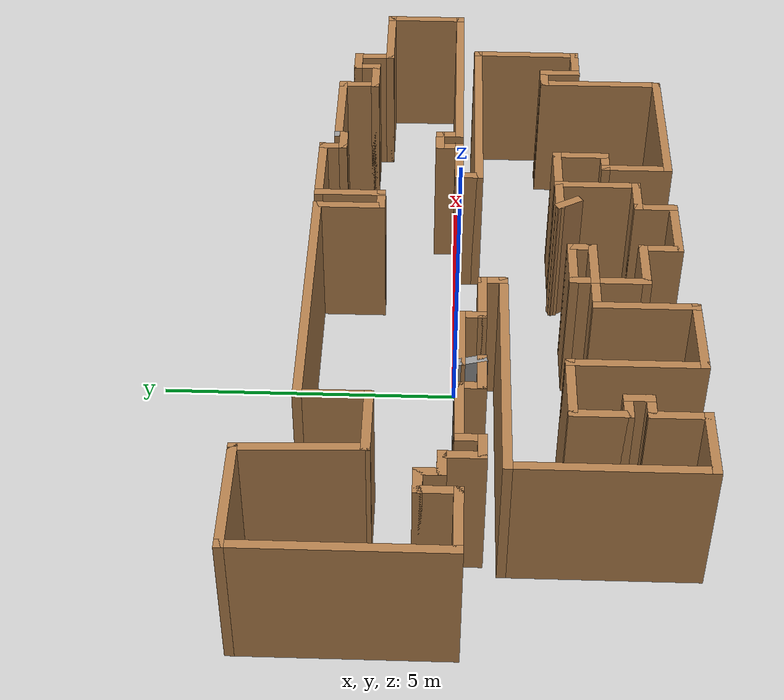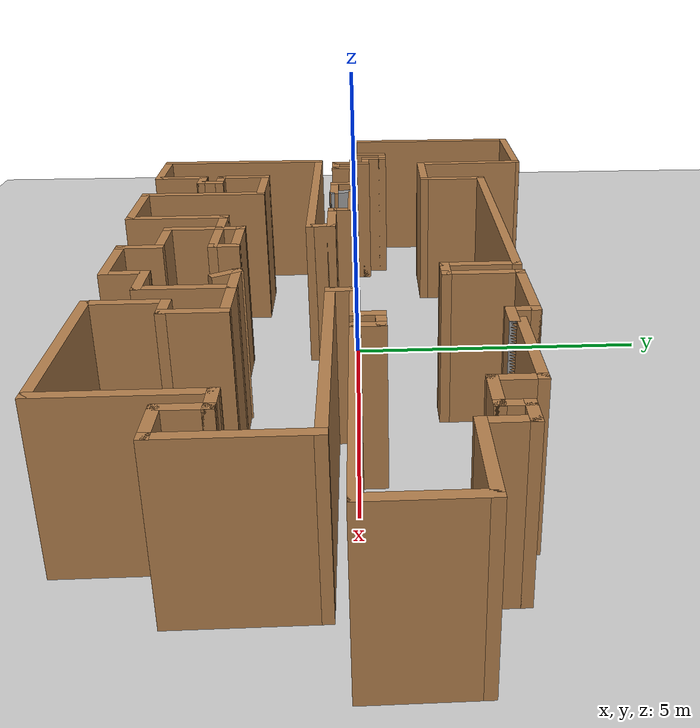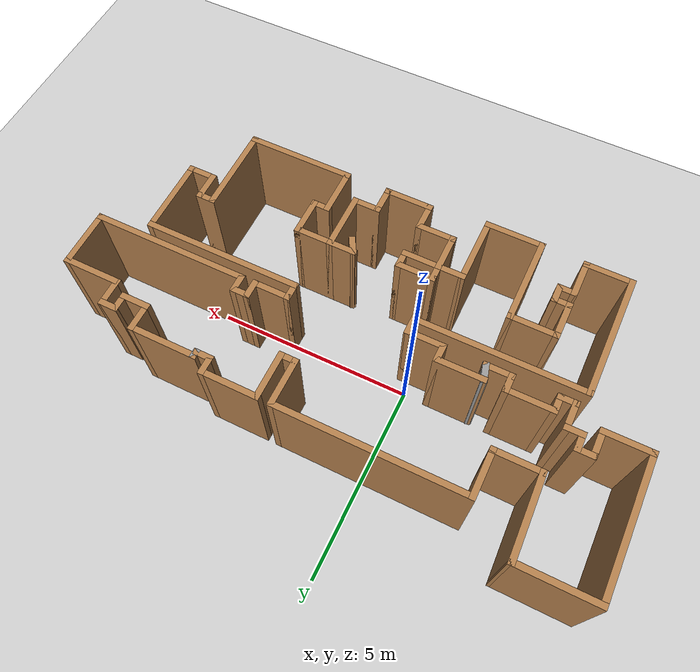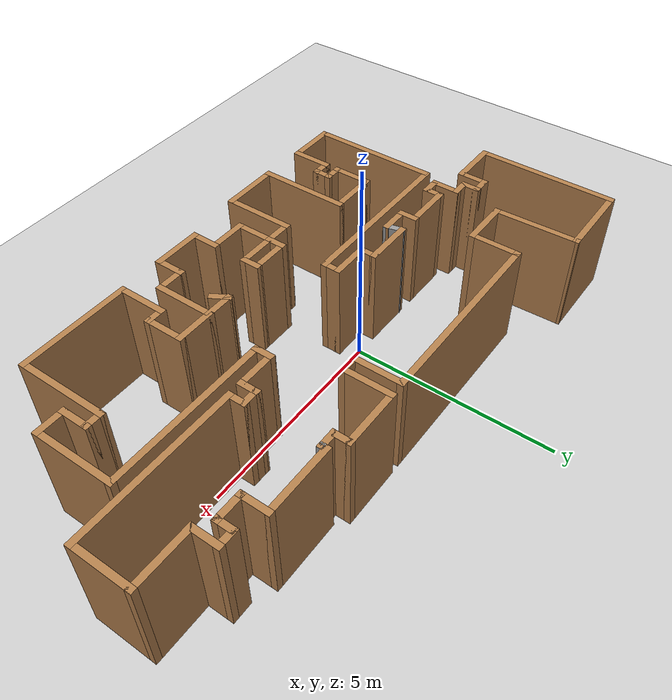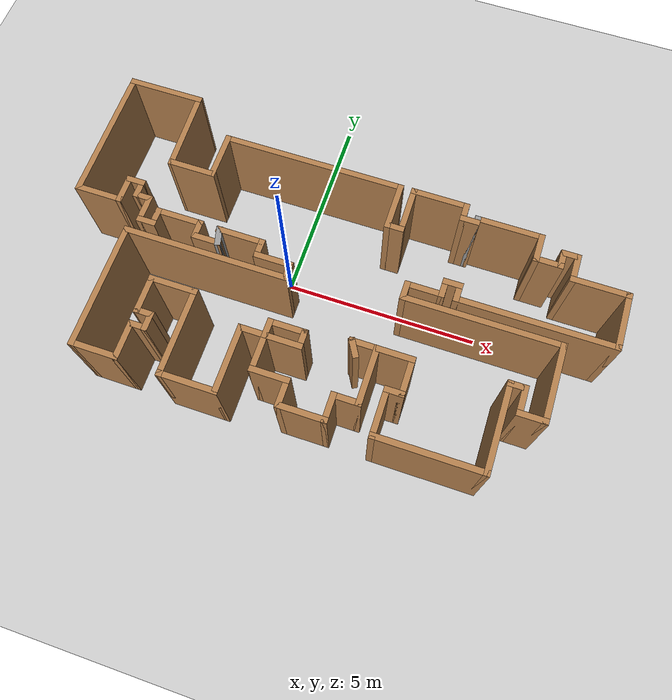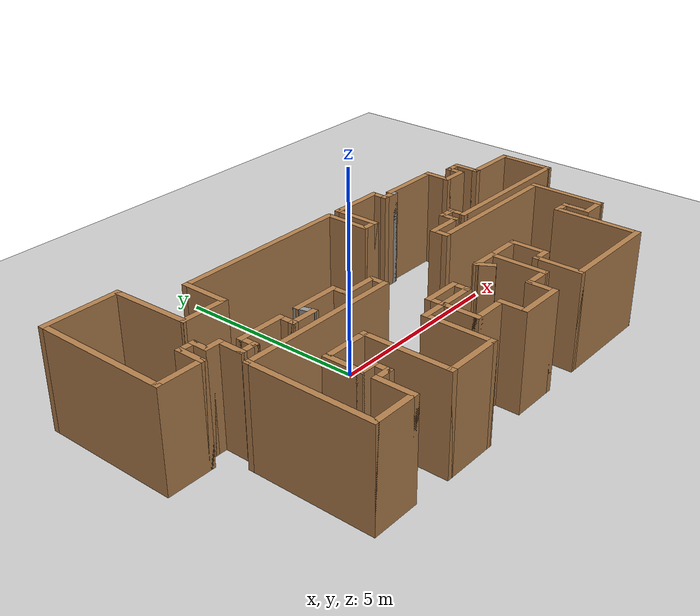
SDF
<sdf version="1.6">
 <world name="default">
  <model name="ground_plane">
   <static>1</static>
   <link name="link">
    <collision name="collision">
     <geometry><plane><normal>0 0 1</normal><size>100 100</size></plane></geometry>
     <surface>
      <contact><collide_bitmask>65535</collide_bitmask></contact>
      <friction><ode><mu>100</mu><mu2>50</mu2></ode></friction>
     </surface>
    </collision>
    <visual name="visual">
     <cast_shadows>0</cast_shadows>
     <geometry><plane><normal>0 0 1</normal><size>100 100</size></plane></geometry>
     <material>
      <script><uri>file://media/materials/scripts/gazebo.material</uri><name>Gazebo/Grey</name></script>
     </material>
    </visual>
   </link>
  </model>
  <model name="map_83">
   <pose>1.33128 -0.274002 0 0 -0 0</pose>
   <link name="Wall_0">
    <collision name="Wall_0_Collision">
     <geometry><box><size>2 0.15 2.5</size></box></geometry>
     <pose>0 0 1.25 0 -0 0</pose>
    </collision>
    <visual name="Wall_0_Visual">
     <pose>0 0 1.25 0 -0 0</pose>
     <geometry><box><size>2 0.15 2.5</size></box></geometry>
     <material>
      <script><uri>file://media/materials/scripts/gazebo.material</uri><name>Gazebo/Wood</name></script>
      <ambient>1 1 1 1</ambient>
     </material>
     <meta><layer>0</layer></meta>
    </visual>
    <pose>-5.85471 3.58172 0 0 -0 3.14159</pose>
   </link>
   <link name="Wall_1">
    <collision name="Wall_1_Collision">
     <geometry><box><size>3.5 0.15 2.5</size></box></geometry>
     <pose>0 0 1.25 0 -0 0</pose>
    </collision>
    <visual name="Wall_1_Visual">
     <pose>0 0 1.25 0 -0 0</pose>
     <geometry><box><size>3.5 0.15 2.5</size></box></geometry>
     <material>
      <script><uri>file://media/materials/scripts/gazebo.material</uri><name>Gazebo/Wood</name></script>
      <ambient>1 1 1 1</ambient>
     </material>
     <meta><layer>0</layer></meta>
    </visual>
    <pose>-6.77971 1.90672 0 0 -0 -1.5708</pose>
   </link>
   <link name="Wall_10">
    <collision name="Wall_10_Collision">
     <geometry><box><size>0.5 0.15 2.5</size></box></geometry>
     <pose>0 0 1.25 0 -0 0</pose>
    </collision>
    <visual name="Wall_10_Visual">
     <pose>0 0 1.25 0 -0 0</pose>
     <geometry><box><size>0.5 0.15 2.5</size></box></geometry>
     <material>
      <script><uri>file://media/materials/scripts/gazebo.material</uri><name>Gazebo/Wood</name></script>
      <ambient>1 1 1 1</ambient>
     </material>
     <meta><layer>0</layer></meta>
    </visual>
    <pose>-5.32971 0.656716 0 0 -0 -1.5708</pose>
   </link>
   <link name="Wall_101">
    <collision name="Wall_101_Collision">
     <geometry><box><size>0.75 0.15 2.5</size></box></geometry>
     <pose>0 0 1.25 0 -0 0</pose>
    </collision>
    <visual name="Wall_101_Visual">
     <pose>0 0 1.25 0 -0 0</pose>
     <geometry><box><size>0.75 0.15 2.5</size></box></geometry>
     <material>
      <script><uri>file://media/materials/scripts/gazebo.material</uri><name>Gazebo/Wood</name></script>
      <ambient>1 1 1 1</ambient>
     </material>
     <meta><layer>0</layer></meta>
    </visual>
    <pose>1.22971 -1.48395 0 0 -0 3.14159</pose>
   </link>
   <link name="Wall_104">
    <collision name="Wall_104_Collision">
     <geometry><box><size>0.5 0.15 2.5</size></box></geometry>
     <pose>0 0 1.25 0 -0 0</pose>
    </collision>
    <visual name="Wall_104_Visual">
     <pose>0 0 1.25 0 -0 0</pose>
     <geometry><box><size>0.5 0.15 2.5</size></box></geometry>
     <material>
      <script><uri>file://media/materials/scripts/gazebo.material</uri><name>Gazebo/Wood</name></script>
      <ambient>1 1 1 1</ambient>
     </material>
     <meta><layer>0</layer></meta>
    </visual>
    <pose>1.01721 -1.6355 0 0 -0 -1.0472</pose>
   </link>
   <link name="Wall_11">
    <collision name="Wall_11_Collision">
     <geometry><box><size>0.5 0.15 2.5</size></box></geometry>
     <pose>0 0 1.25 0 -0 0</pose>
    </collision>
    <visual name="Wall_11_Visual">
     <pose>0 0 1.25 0 -0 0</pose>
     <geometry><box><size>0.5 0.15 2.5</size></box></geometry>
     <material>
      <script><uri>file://media/materials/scripts/gazebo.material</uri><name>Gazebo/Wood</name></script>
      <ambient>1 1 1 1</ambient>
     </material>
     <meta><layer>0</layer></meta>
    </visual>
    <pose>-5.15471 0.481716 0 0 -0 0</pose>
   </link>
   <link name="Wall_12">
    <collision name="Wall_12_Collision">
     <geometry><box><size>0.75 0.15 2.5</size></box></geometry>
     <pose>0 0 1.25 0 -0 0</pose>
    </collision>
    <visual name="Wall_12_Visual">
     <pose>0 0 1.25 0 -0 0</pose>
     <geometry><box><size>0.75 0.15 2.5</size></box></geometry>
     <material>
      <script><uri>file://media/materials/scripts/gazebo.material</uri><name>Gazebo/Wood</name></script>
      <ambient>1 1 1 1</ambient>
     </material>
     <meta><layer>0</layer></meta>
    </visual>
    <pose>-4.97971 0.181717 0 0 -0 -1.5708</pose>
   </link>
   <link name="Wall_13">
    <collision name="Wall_13_Collision">
     <geometry><box><size>0.5 0.15 2.5</size></box></geometry>
     <pose>0 0 1.25 0 -0 0</pose>
    </collision>
    <visual name="Wall_13_Visual">
     <pose>0 0 1.25 0 -0 0</pose>
     <geometry><box><size>0.5 0.15 2.5</size></box></geometry>
     <material>
      <script><uri>file://media/materials/scripts/gazebo.material</uri><name>Gazebo/Wood</name></script>
      <ambient>1 1 1 1</ambient>
     </material>
     <meta><layer>0</layer></meta>
    </visual>
    <pose>-4.80471 -0.118283 0 0 -0 0</pose>
   </link>
   <link name="Wall_14">
    <collision name="Wall_14_Collision">
     <geometry><box><size>0.5 0.15 2.5</size></box></geometry>
     <pose>0 0 1.25 0 -0 0</pose>
    </collision>
    <visual name="Wall_14_Visual">
     <pose>0 0 1.25 0 -0 0</pose>
     <geometry><box><size>0.5 0.15 2.5</size></box></geometry>
     <material>
      <script><uri>file://media/materials/scripts/gazebo.material</uri><name>Gazebo/Wood</name></script>
      <ambient>1 1 1 1</ambient>
     </material>
     <meta><layer>0</layer></meta>
    </visual>
    <pose>-4.62971 0.056717 0 0 -0 1.5708</pose>
   </link>
   <link name="Wall_15">
    <collision name="Wall_15_Collision">
     <geometry><box><size>1.25 0.15 2.5</size></box></geometry>
     <pose>0 0 1.25 0 -0 0</pose>
    </collision>
    <visual name="Wall_15_Visual">
     <pose>0 0 1.25 0 -0 0</pose>
     <geometry><box><size>1.25 0.15 2.5</size></box></geometry>
     <material>
      <script><uri>file://media/materials/scripts/gazebo.material</uri><name>Gazebo/Wood</name></script>
      <ambient>1 1 1 1</ambient>
     </material>
     <meta><layer>0</layer></meta>
    </visual>
    <pose>-4.07971 0.231716 0 0 -0 0</pose>
   </link>
   <link name="Wall_16">
    <collision name="Wall_16_Collision">
     <geometry><box><size>0.5 0.15 2.5</size></box></geometry>
     <pose>0 0 1.25 0 -0 0</pose>
    </collision>
    <visual name="Wall_16_Visual">
     <pose>0 0 1.25 0 -0 0</pose>
     <geometry><box><size>0.5 0.15 2.5</size></box></geometry>
     <material>
      <script><uri>file://media/materials/scripts/gazebo.material</uri><name>Gazebo/Wood</name></script>
      <ambient>1 1 1 1</ambient>
     </material>
     <meta><layer>0</layer></meta>
    </visual>
    <pose>-3.52971 0.056717 0 0 -0 -1.5708</pose>
   </link>
   <link name="Wall_17">
    <collision name="Wall_17_Collision">
     <geometry><box><size>0.75 0.15 2.5</size></box></geometry>
     <pose>0 0 1.25 0 -0 0</pose>
    </collision>
    <visual name="Wall_17_Visual">
     <pose>0 0 1.25 0 -0 0</pose>
     <geometry><box><size>0.75 0.15 2.5</size></box></geometry>
     <material>
      <script><uri>file://media/materials/scripts/gazebo.material</uri><name>Gazebo/Wood</name></script>
      <ambient>1 1 1 1</ambient>
     </material>
     <meta><layer>0</layer></meta>
    </visual>
    <pose>-3.22971 -0.118283 0 0 -0 0</pose>
   </link>
   <link name="Wall_18">
    <collision name="Wall_18_Collision">
     <geometry><box><size>0.5 0.15 2.5</size></box></geometry>
     <pose>0 0 1.25 0 -0 0</pose>
    </collision>
    <visual name="Wall_18_Visual">
     <pose>0 0 1.25 0 -0 0</pose>
     <geometry><box><size>0.5 0.15 2.5</size></box></geometry>
     <material>
      <script><uri>file://media/materials/scripts/gazebo.material</uri><name>Gazebo/Grey</name></script>
      <ambient>1 1 1 1</ambient>
     </material>
     <meta><layer>0</layer></meta>
    </visual>
    <pose>-2.975 0.050753 0 0 -0 1.8326</pose>
   </link>
   <link name="Wall_19">
    <collision name="Wall_19_Collision">
     <geometry><box><size>1.25 0.15 2.5</size></box></geometry>
     <pose>0 0 1.25 0 -0 0</pose>
    </collision>
    <visual name="Wall_19_Visual">
     <pose>0 0 1.25 0 -0 0</pose>
     <geometry><box><size>1.25 0.15 2.5</size></box></geometry>
     <material>
      <script><uri>file://media/materials/scripts/gazebo.material</uri><name>Gazebo/Wood</name></script>
      <ambient>1 1 1 1</ambient>
     </material>
     <meta><layer>0</layer></meta>
    </visual>
    <pose>-2.47029 0.219791 0 0 -0 0</pose>
   </link>
   <link name="Wall_20">
    <collision name="Wall_20_Collision">
     <geometry><box><size>0.5 0.15 2.5</size></box></geometry>
     <pose>0 0 1.25 0 -0 0</pose>
    </collision>
    <visual name="Wall_20_Visual">
     <pose>0 0 1.25 0 -0 0</pose>
     <geometry><box><size>0.5 0.15 2.5</size></box></geometry>
     <material>
      <script><uri>file://media/materials/scripts/gazebo.material</uri><name>Gazebo/Wood</name></script>
      <ambient>1 1 1 1</ambient>
     </material>
     <meta><layer>0</layer></meta>
    </visual>
    <pose>-1.92029 0.044791 0 0 -0 -1.5708</pose>
   </link>
   <link name="Wall_21">
    <collision name="Wall_21_Collision">
     <geometry><box><size>1 0.15 2.5</size></box></geometry>
     <pose>0 0 1.25 0 -0 0</pose>
    </collision>
    <visual name="Wall_21_Visual">
     <pose>0 0 1.25 0 -0 0</pose>
     <geometry><box><size>1 0.15 2.5</size></box></geometry>
     <material>
      <script><uri>file://media/materials/scripts/gazebo.material</uri><name>Gazebo/Wood</name></script>
      <ambient>1 1 1 1</ambient>
     </material>
     <meta><layer>0</layer></meta>
    </visual>
    <pose>-1.49529 -0.130209 0 0 -0 0</pose>
   </link>
   <link name="Wall_22">
    <collision name="Wall_22_Collision">
     <geometry><box><size>0.5 0.15 2.5</size></box></geometry>
     <pose>0 0 1.25 0 -0 0</pose>
    </collision>
    <visual name="Wall_22_Visual">
     <pose>0 0 1.25 0 -0 0</pose>
     <geometry><box><size>0.5 0.15 2.5</size></box></geometry>
     <material>
      <script><uri>file://media/materials/scripts/gazebo.material</uri><name>Gazebo/Wood</name></script>
      <ambient>1 1 1 1</ambient>
     </material>
     <meta><layer>0</layer></meta>
    </visual>
    <pose>-1.07029 -0.305209 0 0 -0 -1.5708</pose>
   </link>
   <link name="Wall_23">
    <collision name="Wall_23_Collision">
     <geometry><box><size>4.25 0.15 2.5</size></box></geometry>
     <pose>0 0 1.25 0 -0 0</pose>
    </collision>
    <visual name="Wall_23_Visual">
     <pose>0 0 1.25 0 -0 0</pose>
     <geometry><box><size>4.25 0.15 2.5</size></box></geometry>
     <material>
      <script><uri>file://media/materials/scripts/gazebo.material</uri><name>Gazebo/Wood</name></script>
      <ambient>1 1 1 1</ambient>
     </material>
     <meta><layer>0</layer></meta>
    </visual>
    <pose>-3.12029 -0.48021 0 0 -0 3.14159</pose>
   </link>
   <link name="Wall_24">
    <collision name="Wall_24_Collision">
     <geometry><box><size>3.20374 0.15 2.5</size></box></geometry>
     <pose>0 0 1.25 0 -0 0</pose>
    </collision>
    <visual name="Wall_24_Visual">
     <pose>0 0 1.25 0 -0 0</pose>
     <geometry><box><size>3.20374 0.15 2.5</size></box></geometry>
     <material>
      <script><uri>file://media/materials/scripts/gazebo.material</uri><name>Gazebo/Wood</name></script>
      <ambient>1 1 1 1</ambient>
     </material>
     <meta><layer>0</layer></meta>
    </visual>
    <pose>-5.17029 -2.00708 0 0 -0 -1.5708</pose>
   </link>
   <link name="Wall_30">
    <collision name="Wall_30_Collision">
     <geometry><box><size>1.25 0.15 2.5</size></box></geometry>
     <pose>0 0 1.25 0 -0 0</pose>
    </collision>
    <visual name="Wall_30_Visual">
     <pose>0 0 1.25 0 -0 0</pose>
     <geometry><box><size>1.25 0.15 2.5</size></box></geometry>
     <material>
      <script><uri>file://media/materials/scripts/gazebo.material</uri><name>Gazebo/Wood</name></script>
      <ambient>1 1 1 1</ambient>
     </material>
     <meta><layer>0</layer></meta>
    </visual>
    <pose>-4.62029 -3.53395 0 0 -0 0</pose>
   </link>
   <link name="Wall_31">
    <collision name="Wall_31_Collision">
     <geometry><box><size>1 0.15 2.5</size></box></geometry>
     <pose>0 0 1.25 0 -0 0</pose>
    </collision>
    <visual name="Wall_31_Visual">
     <pose>0 0 1.25 0 -0 0</pose>
     <geometry><box><size>1 0.15 2.5</size></box></geometry>
     <material>
      <script><uri>file://media/materials/scripts/gazebo.material</uri><name>Gazebo/Wood</name></script>
      <ambient>1 1 1 1</ambient>
     </material>
     <meta><layer>0</layer></meta>
    </visual>
    <pose>-4.07029 -3.10895 0 0 -0 1.5708</pose>
   </link>
   <link name="Wall_32">
    <collision name="Wall_32_Collision">
     <geometry><box><size>0.5 0.15 2.5</size></box></geometry>
     <pose>0 0 1.25 0 -0 0</pose>
    </collision>
    <visual name="Wall_32_Visual">
     <pose>0 0 1.25 0 -0 0</pose>
     <geometry><box><size>0.5 0.15 2.5</size></box></geometry>
     <material>
      <script><uri>file://media/materials/scripts/gazebo.material</uri><name>Gazebo/Wood</name></script>
      <ambient>1 1 1 1</ambient>
     </material>
     <meta><layer>0</layer></meta>
    </visual>
    <pose>-3.89529 -2.68395 0 0 -0 0</pose>
   </link>
   <link name="Wall_33">
    <collision name="Wall_33_Collision">
     <geometry><box><size>0.5 0.15 2.5</size></box></geometry>
     <pose>0 0 1.25 0 -0 0</pose>
    </collision>
    <visual name="Wall_33_Visual">
     <pose>0 0 1.25 0 -0 0</pose>
     <geometry><box><size>0.5 0.15 2.5</size></box></geometry>
     <material>
      <script><uri>file://media/materials/scripts/gazebo.material</uri><name>Gazebo/Wood</name></script>
      <ambient>1 1 1 1</ambient>
     </material>
     <meta><layer>0</layer></meta>
    </visual>
    <pose>-3.72029 -2.50895 0 0 -0 1.5708</pose>
   </link>
   <link name="Wall_34">
    <collision name="Wall_34_Collision">
     <geometry><box><size>0.5 0.15 2.5</size></box></geometry>
     <pose>0 0 1.25 0 -0 0</pose>
    </collision>
    <visual name="Wall_34_Visual">
     <pose>0 0 1.25 0 -0 0</pose>
     <geometry><box><size>0.5 0.15 2.5</size></box></geometry>
     <material>
      <script><uri>file://media/materials/scripts/gazebo.material</uri><name>Gazebo/Wood</name></script>
      <ambient>1 1 1 1</ambient>
     </material>
     <meta><layer>0</layer></meta>
    </visual>
    <pose>-3.89529 -2.33395 0 0 -0 3.14159</pose>
   </link>
   <link name="Wall_35">
    <collision name="Wall_35_Collision">
     <geometry><box><size>1 0.15 2.5</size></box></geometry>
     <pose>0 0 1.25 0 -0 0</pose>
    </collision>
    <visual name="Wall_35_Visual">
     <pose>0 0 1.25 0 -0 0</pose>
     <geometry><box><size>1 0.15 2.5</size></box></geometry>
     <material>
      <script><uri>file://media/materials/scripts/gazebo.material</uri><name>Gazebo/Wood</name></script>
      <ambient>1 1 1 1</ambient>
     </material>
     <meta><layer>0</layer></meta>
    </visual>
    <pose>-4.07029 -1.90895 0 0 -0 1.5708</pose>
   </link>
   <link name="Wall_36">
    <collision name="Wall_36_Collision">
     <geometry><box><size>1.25 0.15 2.5</size></box></geometry>
     <pose>0 0 1.25 0 -0 0</pose>
    </collision>
    <visual name="Wall_36_Visual">
     <pose>0 0 1.25 0 -0 0</pose>
     <geometry><box><size>1.25 0.15 2.5</size></box></geometry>
     <material>
      <script><uri>file://media/materials/scripts/gazebo.material</uri><name>Gazebo/Wood</name></script>
      <ambient>1 1 1 1</ambient>
     </material>
     <meta><layer>0</layer></meta>
    </visual>
    <pose>-3.52029 -1.48395 0 0 -0 0</pose>
   </link>
   <link name="Wall_37">
    <collision name="Wall_37_Collision">
     <geometry><box><size>2.25 0.15 2.5</size></box></geometry>
     <pose>0 0 1.25 0 -0 0</pose>
    </collision>
    <visual name="Wall_37_Visual">
     <pose>0 0 1.25 0 -0 0</pose>
     <geometry><box><size>2.25 0.15 2.5</size></box></geometry>
     <material>
      <script><uri>file://media/materials/scripts/gazebo.material</uri><name>Gazebo/Wood</name></script>
      <ambient>1 1 1 1</ambient>
     </material>
     <meta><layer>0</layer></meta>
    </visual>
    <pose>-2.97029 -2.53395 0 0 -0 -1.5708</pose>
   </link>
   <link name="Wall_38">
    <collision name="Wall_38_Collision">
     <geometry><box><size>1.5 0.15 2.5</size></box></geometry>
     <pose>0 0 1.25 0 -0 0</pose>
    </collision>
    <visual name="Wall_38_Visual">
     <pose>0 0 1.25 0 -0 0</pose>
     <geometry><box><size>1.5 0.15 2.5</size></box></geometry>
     <material>
      <script><uri>file://media/materials/scripts/gazebo.material</uri><name>Gazebo/Wood</name></script>
      <ambient>1 1 1 1</ambient>
     </material>
     <meta><layer>0</layer></meta>
    </visual>
    <pose>-2.29529 -3.58395 0 0 -0 0</pose>
   </link>
   <link name="Wall_42">
    <collision name="Wall_42_Collision">
     <geometry><box><size>1.75 0.15 2.5</size></box></geometry>
     <pose>0 0 1.25 0 -0 0</pose>
    </collision>
    <visual name="Wall_42_Visual">
     <pose>0 0 1.25 0 -0 0</pose>
     <geometry><box><size>1.75 0.15 2.5</size></box></geometry>
     <material>
      <script><uri>file://media/materials/scripts/gazebo.material</uri><name>Gazebo/Wood</name></script>
      <ambient>1 1 1 1</ambient>
     </material>
     <meta><layer>0</layer></meta>
    </visual>
    <pose>-1.62029 -2.78395 0 0 -0 1.5708</pose>
   </link>
   <link name="Wall_43">
    <collision name="Wall_43_Collision">
     <geometry><box><size>0.75 0.15 2.5</size></box></geometry>
     <pose>0 0 1.25 0 -0 0</pose>
    </collision>
    <visual name="Wall_43_Visual">
     <pose>0 0 1.25 0 -0 0</pose>
     <geometry><box><size>0.75 0.15 2.5</size></box></geometry>
     <material>
      <script><uri>file://media/materials/scripts/gazebo.material</uri><name>Gazebo/Wood</name></script>
      <ambient>1 1 1 1</ambient>
     </material>
     <meta><layer>0</layer></meta>
    </visual>
    <pose>-1.32029 -1.98395 0 0 -0 0</pose>
   </link>
   <link name="Wall_44">
    <collision name="Wall_44_Collision">
     <geometry><box><size>0.5 0.15 2.5</size></box></geometry>
     <pose>0 0 1.25 0 -0 0</pose>
    </collision>
    <visual name="Wall_44_Visual">
     <pose>0 0 1.25 0 -0 0</pose>
     <geometry><box><size>0.5 0.15 2.5</size></box></geometry>
     <material>
      <script><uri>file://media/materials/scripts/gazebo.material</uri><name>Gazebo/Wood</name></script>
      <ambient>1 1 1 1</ambient>
     </material>
     <meta><layer>0</layer></meta>
    </visual>
    <pose>-1.02029 -1.80895 0 0 -0 1.5708</pose>
   </link>
   <link name="Wall_45">
    <collision name="Wall_45_Collision">
     <geometry><box><size>1 0.15 2.5</size></box></geometry>
     <pose>0 0 1.25 0 -0 0</pose>
    </collision>
    <visual name="Wall_45_Visual">
     <pose>0 0 1.25 0 -0 0</pose>
     <geometry><box><size>1 0.15 2.5</size></box></geometry>
     <material>
      <script><uri>file://media/materials/scripts/gazebo.material</uri><name>Gazebo/Wood</name></script>
      <ambient>1 1 1 1</ambient>
     </material>
     <meta><layer>0</layer></meta>
    </visual>
    <pose>-0.595293 -1.63395 0 0 -0 0</pose>
   </link>
   <link name="Wall_50">
    <collision name="Wall_50_Collision">
     <geometry><box><size>0.5 0.15 2.5</size></box></geometry>
     <pose>0 0 1.25 0 -0 0</pose>
    </collision>
    <visual name="Wall_50_Visual">
     <pose>0 0 1.25 0 -0 0</pose>
     <geometry><box><size>0.5 0.15 2.5</size></box></geometry>
     <material>
      <script><uri>file://media/materials/scripts/gazebo.material</uri><name>Gazebo/Wood</name></script>
      <ambient>1 1 1 1</ambient>
     </material>
     <meta><layer>0</layer></meta>
    </visual>
    <pose>-0.170293 -1.80895 0 0 -0 -1.5708</pose>
   </link>
   <link name="Wall_51">
    <collision name="Wall_51_Collision">
     <geometry><box><size>1 0.15 2.5</size></box></geometry>
     <pose>0 0 1.25 0 -0 0</pose>
    </collision>
    <visual name="Wall_51_Visual">
     <pose>0 0 1.25 0 -0 0</pose>
     <geometry><box><size>1 0.15 2.5</size></box></geometry>
     <material>
      <script><uri>file://media/materials/scripts/gazebo.material</uri><name>Gazebo/Wood</name></script>
      <ambient>1 1 1 1</ambient>
     </material>
     <meta><layer>0</layer></meta>
    </visual>
    <pose>-0.595293 -1.98395 0 0 -0 3.14159</pose>
   </link>
   <link name="Wall_52">
    <collision name="Wall_52_Collision">
     <geometry><box><size>1 0.15 2.5</size></box></geometry>
     <pose>0 0 1.25 0 -0 0</pose>
    </collision>
    <visual name="Wall_52_Visual">
     <pose>0 0 1.25 0 -0 0</pose>
     <geometry><box><size>1 0.15 2.5</size></box></geometry>
     <material>
      <script><uri>file://media/materials/scripts/gazebo.material</uri><name>Gazebo/Wood</name></script>
      <ambient>1 1 1 1</ambient>
     </material>
     <meta><layer>0</layer></meta>
    </visual>
    <pose>-1.02029 -2.40895 0 0 -0 -1.5708</pose>
   </link>
   <link name="Wall_53">
    <collision name="Wall_53_Collision">
     <geometry><box><size>1 0.15 2.5</size></box></geometry>
     <pose>0 0 1.25 0 -0 0</pose>
    </collision>
    <visual name="Wall_53_Visual">
     <pose>0 0 1.25 0 -0 0</pose>
     <geometry><box><size>1 0.15 2.5</size></box></geometry>
     <material>
      <script><uri>file://media/materials/scripts/gazebo.material</uri><name>Gazebo/Wood</name></script>
      <ambient>1 1 1 1</ambient>
     </material>
     <meta><layer>0</layer></meta>
    </visual>
    <pose>-0.595293 -2.83395 0 0 -0 0</pose>
   </link>
   <link name="Wall_54">
    <collision name="Wall_54_Collision">
     <geometry><box><size>0.75 0.15 2.5</size></box></geometry>
     <pose>0 0 1.25 0 -0 0</pose>
    </collision>
    <visual name="Wall_54_Visual">
     <pose>0 0 1.25 0 -0 0</pose>
     <geometry><box><size>0.75 0.15 2.5</size></box></geometry>
     <material>
      <script><uri>file://media/materials/scripts/gazebo.material</uri><name>Gazebo/Wood</name></script>
      <ambient>1 1 1 1</ambient>
     </material>
     <meta><layer>0</layer></meta>
    </visual>
    <pose>-0.170293 -3.13395 0 0 -0 -1.5708</pose>
   </link>
   <link name="Wall_55">
    <collision name="Wall_55_Collision">
     <geometry><box><size>1.25 0.15 2.5</size></box></geometry>
     <pose>0 0 1.25 0 -0 0</pose>
    </collision>
    <visual name="Wall_55_Visual">
     <pose>0 0 1.25 0 -0 0</pose>
     <geometry><box><size>1.25 0.15 2.5</size></box></geometry>
     <material>
      <script><uri>file://media/materials/scripts/gazebo.material</uri><name>Gazebo/Wood</name></script>
      <ambient>1 1 1 1</ambient>
     </material>
     <meta><layer>0</layer></meta>
    </visual>
    <pose>0.379707 -3.43395 0 0 -0 0</pose>
   </link>
   <link name="Wall_56">
    <collision name="Wall_56_Collision">
     <geometry><box><size>0.75 0.15 2.5</size></box></geometry>
     <pose>0 0 1.25 0 -0 0</pose>
    </collision>
    <visual name="Wall_56_Visual">
     <pose>0 0 1.25 0 -0 0</pose>
     <geometry><box><size>0.75 0.15 2.5</size></box></geometry>
     <material>
      <script><uri>file://media/materials/scripts/gazebo.material</uri><name>Gazebo/Wood</name></script>
      <ambient>1 1 1 1</ambient>
     </material>
     <meta><layer>0</layer></meta>
    </visual>
    <pose>0.929707 -3.13395 0 0 -0 1.5708</pose>
   </link>
   <link name="Wall_57">
    <collision name="Wall_57_Collision">
     <geometry><box><size>0.75 0.15 2.5</size></box></geometry>
     <pose>0 0 1.25 0 -0 0</pose>
    </collision>
    <visual name="Wall_57_Visual">
     <pose>0 0 1.25 0 -0 0</pose>
     <geometry><box><size>0.75 0.15 2.5</size></box></geometry>
     <material>
      <script><uri>file://media/materials/scripts/gazebo.material</uri><name>Gazebo/Wood</name></script>
      <ambient>1 1 1 1</ambient>
     </material>
     <meta><layer>0</layer></meta>
    </visual>
    <pose>1.22971 -2.83395 0 0 -0 0</pose>
   </link>
   <link name="Wall_58">
    <collision name="Wall_58_Collision">
     <geometry><box><size>1.5 0.15 2.5</size></box></geometry>
     <pose>0 0 1.25 0 -0 0</pose>
    </collision>
    <visual name="Wall_58_Visual">
     <pose>0 0 1.25 0 -0 0</pose>
     <geometry><box><size>1.5 0.15 2.5</size></box></geometry>
     <material>
      <script><uri>file://media/materials/scripts/gazebo.material</uri><name>Gazebo/Wood</name></script>
      <ambient>1 1 1 1</ambient>
     </material>
     <meta><layer>0</layer></meta>
    </visual>
    <pose>1.52971 -2.15895 0 0 -0 1.5708</pose>
   </link>
   <link name="Wall_59">
    <collision name="Wall_59_Collision">
     <geometry><box><size>1 0.15 2.5</size></box></geometry>
     <pose>0 0 1.25 0 -0 0</pose>
    </collision>
    <visual name="Wall_59_Visual">
     <pose>0 0 1.25 0 -0 0</pose>
     <geometry><box><size>1 0.15 2.5</size></box></geometry>
     <material>
      <script><uri>file://media/materials/scripts/gazebo.material</uri><name>Gazebo/Wood</name></script>
      <ambient>1 1 1 1</ambient>
     </material>
     <meta><layer>0</layer></meta>
    </visual>
    <pose>1.95471 -1.48395 0 0 -0 0</pose>
   </link>
   <link name="Wall_60">
    <collision name="Wall_60_Collision">
     <geometry><box><size>1 0.15 2.5</size></box></geometry>
     <pose>0 0 1.25 0 -0 0</pose>
    </collision>
    <visual name="Wall_60_Visual">
     <pose>0 0 1.25 0 -0 0</pose>
     <geometry><box><size>1 0.15 2.5</size></box></geometry>
     <material>
      <script><uri>file://media/materials/scripts/gazebo.material</uri><name>Gazebo/Wood</name></script>
      <ambient>1 1 1 1</ambient>
     </material>
     <meta><layer>0</layer></meta>
    </visual>
    <pose>2.37971 -1.90895 0 0 -0 -1.5708</pose>
   </link>
   <link name="Wall_61">
    <collision name="Wall_61_Collision">
     <geometry><box><size>0.5 0.15 2.5</size></box></geometry>
     <pose>0 0 1.25 0 -0 0</pose>
    </collision>
    <visual name="Wall_61_Visual">
     <pose>0 0 1.25 0 -0 0</pose>
     <geometry><box><size>0.5 0.15 2.5</size></box></geometry>
     <material>
      <script><uri>file://media/materials/scripts/gazebo.material</uri><name>Gazebo/Wood</name></script>
      <ambient>1 1 1 1</ambient>
     </material>
     <meta><layer>0</layer></meta>
    </visual>
    <pose>2.20471 -2.33395 0 0 -0 3.14159</pose>
   </link>
   <link name="Wall_62">
    <collision name="Wall_62_Collision">
     <geometry><box><size>1.25 0.15 2.5</size></box></geometry>
     <pose>0 0 1.25 0 -0 0</pose>
    </collision>
    <visual name="Wall_62_Visual">
     <pose>0 0 1.25 0 -0 0</pose>
     <geometry><box><size>1.25 0.15 2.5</size></box></geometry>
     <material>
      <script><uri>file://media/materials/scripts/gazebo.material</uri><name>Gazebo/Wood</name></script>
      <ambient>1 1 1 1</ambient>
     </material>
     <meta><layer>0</layer></meta>
    </visual>
    <pose>2.02971 -2.88395 0 0 -0 -1.5708</pose>
   </link>
   <link name="Wall_63">
    <collision name="Wall_63_Collision">
     <geometry><box><size>2.75 0.15 2.5</size></box></geometry>
     <pose>0 0 1.25 0 -0 0</pose>
    </collision>
    <visual name="Wall_63_Visual">
     <pose>0 0 1.25 0 -0 0</pose>
     <geometry><box><size>2.75 0.15 2.5</size></box></geometry>
     <material>
      <script><uri>file://media/materials/scripts/gazebo.material</uri><name>Gazebo/Wood</name></script>
      <ambient>1 1 1 1</ambient>
     </material>
     <meta><layer>0</layer></meta>
    </visual>
    <pose>3.32971 -3.43395 0 0 -0 0</pose>
   </link>
   <link name="Wall_64">
    <collision name="Wall_64_Collision">
     <geometry><box><size>2.25 0.15 2.5</size></box></geometry>
     <pose>0 0 1.25 0 -0 0</pose>
    </collision>
    <visual name="Wall_64_Visual">
     <pose>0 0 1.25 0 -0 0</pose>
     <geometry><box><size>2.25 0.15 2.5</size></box></geometry>
     <material>
      <script><uri>file://media/materials/scripts/gazebo.material</uri><name>Gazebo/Wood</name></script>
      <ambient>1 1 1 1</ambient>
     </material>
     <meta><layer>0</layer></meta>
    </visual>
    <pose>4.62971 -2.38395 0 0 -0 1.5708</pose>
   </link>
   <link name="Wall_65">
    <collision name="Wall_65_Collision">
     <geometry><box><size>0.5 0.15 2.5</size></box></geometry>
     <pose>0 0 1.25 0 -0 0</pose>
    </collision>
    <visual name="Wall_65_Visual">
     <pose>0 0 1.25 0 -0 0</pose>
     <geometry><box><size>0.5 0.15 2.5</size></box></geometry>
     <material>
      <script><uri>file://media/materials/scripts/gazebo.material</uri><name>Gazebo/Wood</name></script>
      <ambient>1 1 1 1</ambient>
     </material>
     <meta><layer>0</layer></meta>
    </visual>
    <pose>4.80471 -1.33395 0 0 -0 0</pose>
   </link>
   <link name="Wall_66">
    <collision name="Wall_66_Collision">
     <geometry><box><size>0.75 0.15 2.5</size></box></geometry>
     <pose>0 0 1.25 0 -0 0</pose>
    </collision>
    <visual name="Wall_66_Visual">
     <pose>0 0 1.25 0 -0 0</pose>
     <geometry><box><size>0.75 0.15 2.5</size></box></geometry>
     <material>
      <script><uri>file://media/materials/scripts/gazebo.material</uri><name>Gazebo/Wood</name></script>
      <ambient>1 1 1 1</ambient>
     </material>
     <meta><layer>0</layer></meta>
    </visual>
    <pose>4.97971 -1.63395 0 0 -0 -1.5708</pose>
   </link>
   <link name="Wall_67">
    <collision name="Wall_67_Collision">
     <geometry><box><size>0.75 0.15 2.5</size></box></geometry>
     <pose>0 0 1.25 0 -0 0</pose>
    </collision>
    <visual name="Wall_67_Visual">
     <pose>0 0 1.25 0 -0 0</pose>
     <geometry><box><size>0.75 0.15 2.5</size></box></geometry>
     <material>
      <script><uri>file://media/materials/scripts/gazebo.material</uri><name>Gazebo/Wood</name></script>
      <ambient>1 1 1 1</ambient>
     </material>
     <meta><layer>0</layer></meta>
    </visual>
    <pose>5.27971 -1.93395 0 0 -0 0</pose>
   </link>
   <link name="Wall_68">
    <collision name="Wall_68_Collision">
     <geometry><box><size>2 0.15 2.5</size></box></geometry>
     <pose>0 0 1.25 0 -0 0</pose>
    </collision>
    <visual name="Wall_68_Visual">
     <pose>0 0 1.25 0 -0 0</pose>
     <geometry><box><size>2 0.15 2.5</size></box></geometry>
     <material>
      <script><uri>file://media/materials/scripts/gazebo.material</uri><name>Gazebo/Wood</name></script>
      <ambient>1 1 1 1</ambient>
     </material>
     <meta><layer>0</layer></meta>
    </visual>
    <pose>5.57971 -1.00895 0 0 -0 1.5708</pose>
   </link>
   <link name="Wall_69">
    <collision name="Wall_69_Collision">
     <geometry><box><size>4 0.15 2.5</size></box></geometry>
     <pose>0 0 1.25 0 -0 0</pose>
    </collision>
    <visual name="Wall_69_Visual">
     <pose>0 0 1.25 0 -0 0</pose>
     <geometry><box><size>4 0.15 2.5</size></box></geometry>
     <material>
      <script><uri>file://media/materials/scripts/gazebo.material</uri><name>Gazebo/Wood</name></script>
      <ambient>1 1 1 1</ambient>
     </material>
     <meta><layer>0</layer></meta>
    </visual>
    <pose>3.65471 -0.083948 0 0 -0 3.14159</pose>
   </link>
   <link name="Wall_7">
    <collision name="Wall_7_Collision">
     <geometry><box><size>1.25 0.15 2.5</size></box></geometry>
     <pose>0 0 1.25 0 -0 0</pose>
    </collision>
    <visual name="Wall_7_Visual">
     <pose>0 0 1.25 0 -0 0</pose>
     <geometry><box><size>1.25 0.15 2.5</size></box></geometry>
     <material>
      <script><uri>file://media/materials/scripts/gazebo.material</uri><name>Gazebo/Wood</name></script>
      <ambient>1 1 1 1</ambient>
     </material>
     <meta><layer>0</layer></meta>
    </visual>
    <pose>-6.22971 0.231716 0 0 -0 0</pose>
   </link>
   <link name="Wall_72">
    <collision name="Wall_72_Collision">
     <geometry><box><size>0.5 0.15 2.5</size></box></geometry>
     <pose>0 0 1.25 0 -0 0</pose>
    </collision>
    <visual name="Wall_72_Visual">
     <pose>0 0 1.25 0 -0 0</pose>
     <geometry><box><size>0.5 0.15 2.5</size></box></geometry>
     <material>
      <script><uri>file://media/materials/scripts/gazebo.material</uri><name>Gazebo/Wood</name></script>
      <ambient>1 1 1 1</ambient>
     </material>
     <meta><layer>0</layer></meta>
    </visual>
    <pose>1.72971 0.091052 0 0 -0 1.5708</pose>
   </link>
   <link name="Wall_73">
    <collision name="Wall_73_Collision">
     <geometry><box><size>1 0.15 2.5</size></box></geometry>
     <pose>0 0 1.25 0 -0 0</pose>
    </collision>
    <visual name="Wall_73_Visual">
     <pose>0 0 1.25 0 -0 0</pose>
     <geometry><box><size>1 0.15 2.5</size></box></geometry>
     <material>
      <script><uri>file://media/materials/scripts/gazebo.material</uri><name>Gazebo/Wood</name></script>
      <ambient>1 1 1 1</ambient>
     </material>
     <meta><layer>0</layer></meta>
    </visual>
    <pose>2.15471 0.266052 0 0 -0 0</pose>
   </link>
   <link name="Wall_74">
    <collision name="Wall_74_Collision">
     <geometry><box><size>0.5 0.15 2.5</size></box></geometry>
     <pose>0 0 1.25 0 -0 0</pose>
    </collision>
    <visual name="Wall_74_Visual">
     <pose>0 0 1.25 0 -0 0</pose>
     <geometry><box><size>0.5 0.15 2.5</size></box></geometry>
     <material>
      <script><uri>file://media/materials/scripts/gazebo.material</uri><name>Gazebo/Wood</name></script>
      <ambient>1 1 1 1</ambient>
     </material>
     <meta><layer>0</layer></meta>
    </visual>
    <pose>2.57971 0.441052 0 0 -0 1.5708</pose>
   </link>
   <link name="Wall_75">
    <collision name="Wall_75_Collision">
     <geometry><box><size>0.5 0.15 2.5</size></box></geometry>
     <pose>0 0 1.25 0 -0 0</pose>
    </collision>
    <visual name="Wall_75_Visual">
     <pose>0 0 1.25 0 -0 0</pose>
     <geometry><box><size>0.5 0.15 2.5</size></box></geometry>
     <material>
      <script><uri>file://media/materials/scripts/gazebo.material</uri><name>Gazebo/Wood</name></script>
      <ambient>1 1 1 1</ambient>
     </material>
     <meta><layer>0</layer></meta>
    </visual>
    <pose>2.75471 0.616052 0 0 -0 0</pose>
   </link>
   <link name="Wall_76">
    <collision name="Wall_76_Collision">
     <geometry><box><size>0.5 0.15 2.5</size></box></geometry>
     <pose>0 0 1.25 0 -0 0</pose>
    </collision>
    <visual name="Wall_76_Visual">
     <pose>0 0 1.25 0 -0 0</pose>
     <geometry><box><size>0.5 0.15 2.5</size></box></geometry>
     <material>
      <script><uri>file://media/materials/scripts/gazebo.material</uri><name>Gazebo/Wood</name></script>
      <ambient>1 1 1 1</ambient>
     </material>
     <meta><layer>0</layer></meta>
    </visual>
    <pose>2.92971 0.441052 0 0 -0 -1.5708</pose>
   </link>
   <link name="Wall_77">
    <collision name="Wall_77_Collision">
     <geometry><box><size>4 0.15 2.5</size></box></geometry>
     <pose>0 0 1.25 0 -0 0</pose>
    </collision>
    <visual name="Wall_77_Visual">
     <pose>0 0 1.25 0 -0 0</pose>
     <geometry><box><size>4 0.15 2.5</size></box></geometry>
     <material>
      <script><uri>file://media/materials/scripts/gazebo.material</uri><name>Gazebo/Wood</name></script>
      <ambient>1 1 1 1</ambient>
     </material>
     <meta><layer>0</layer></meta>
    </visual>
    <pose>4.85471 0.266052 0 0 -0 0</pose>
   </link>
   <link name="Wall_78">
    <collision name="Wall_78_Collision">
     <geometry><box><size>1.5 0.15 2.5</size></box></geometry>
     <pose>0 0 1.25 0 -0 0</pose>
    </collision>
    <visual name="Wall_78_Visual">
     <pose>0 0 1.25 0 -0 0</pose>
     <geometry><box><size>1.5 0.15 2.5</size></box></geometry>
     <material>
      <script><uri>file://media/materials/scripts/gazebo.material</uri><name>Gazebo/Wood</name></script>
      <ambient>1 1 1 1</ambient>
     </material>
     <meta><layer>0</layer></meta>
    </visual>
    <pose>6.77971 0.941052 0 0 -0 1.5708</pose>
   </link>
   <link name="Wall_79">
    <collision name="Wall_79_Collision">
     <geometry><box><size>1.5 0.15 2.5</size></box></geometry>
     <pose>0 0 1.25 0 -0 0</pose>
    </collision>
    <visual name="Wall_79_Visual">
     <pose>0 0 1.25 0 -0 0</pose>
     <geometry><box><size>1.5 0.15 2.5</size></box></geometry>
     <material>
      <script><uri>file://media/materials/scripts/gazebo.material</uri><name>Gazebo/Wood</name></script>
      <ambient>1 1 1 1</ambient>
     </material>
     <meta><layer>0</layer></meta>
    </visual>
    <pose>6.10471 1.61605 0 0 -0 3.14159</pose>
   </link>
   <link name="Wall_8">
    <collision name="Wall_8_Collision">
     <geometry><box><size>0.75 0.15 2.5</size></box></geometry>
     <pose>0 0 1.25 0 -0 0</pose>
    </collision>
    <visual name="Wall_8_Visual">
     <pose>0 0 1.25 0 -0 0</pose>
     <geometry><box><size>0.75 0.15 2.5</size></box></geometry>
     <material>
      <script><uri>file://media/materials/scripts/gazebo.material</uri><name>Gazebo/Wood</name></script>
      <ambient>1 1 1 1</ambient>
     </material>
     <meta><layer>0</layer></meta>
    </visual>
    <pose>-5.67971 0.531716 0 0 -0 1.5708</pose>
   </link>
   <link name="Wall_80">
    <collision name="Wall_80_Collision">
     <geometry><box><size>0.75 0.15 2.5</size></box></geometry>
     <pose>0 0 1.25 0 -0 0</pose>
    </collision>
    <visual name="Wall_80_Visual">
     <pose>0 0 1.25 0 -0 0</pose>
     <geometry><box><size>0.75 0.15 2.5</size></box></geometry>
     <material>
      <script><uri>file://media/materials/scripts/gazebo.material</uri><name>Gazebo/Wood</name></script>
      <ambient>1 1 1 1</ambient>
     </material>
     <meta><layer>0</layer></meta>
    </visual>
    <pose>5.42971 1.91605 0 0 -0 1.5708</pose>
   </link>
   <link name="Wall_81">
    <collision name="Wall_81_Collision">
     <geometry><box><size>0.5 0.15 2.5</size></box></geometry>
     <pose>0 0 1.25 0 -0 0</pose>
    </collision>
    <visual name="Wall_81_Visual">
     <pose>0 0 1.25 0 -0 0</pose>
     <geometry><box><size>0.5 0.15 2.5</size></box></geometry>
     <material>
      <script><uri>file://media/materials/scripts/gazebo.material</uri><name>Gazebo/Wood</name></script>
      <ambient>1 1 1 1</ambient>
     </material>
     <meta><layer>0</layer></meta>
    </visual>
    <pose>5.25471 2.21605 0 0 -0 3.14159</pose>
   </link>
   <link name="Wall_82">
    <collision name="Wall_82_Collision">
     <geometry><box><size>0.5 0.15 2.5</size></box></geometry>
     <pose>0 0 1.25 0 -0 0</pose>
    </collision>
    <visual name="Wall_82_Visual">
     <pose>0 0 1.25 0 -0 0</pose>
     <geometry><box><size>0.5 0.15 2.5</size></box></geometry>
     <material>
      <script><uri>file://media/materials/scripts/gazebo.material</uri><name>Gazebo/Wood</name></script>
      <ambient>1 1 1 1</ambient>
     </material>
     <meta><layer>0</layer></meta>
    </visual>
    <pose>5.07971 2.04105 0 0 -0 -1.5708</pose>
   </link>
   <link name="Wall_83">
    <collision name="Wall_83_Collision">
     <geometry><box><size>0.75 0.15 2.5</size></box></geometry>
     <pose>0 0 1.25 0 -0 0</pose>
    </collision>
    <visual name="Wall_83_Visual">
     <pose>0 0 1.25 0 -0 0</pose>
     <geometry><box><size>0.75 0.15 2.5</size></box></geometry>
     <material>
      <script><uri>file://media/materials/scripts/gazebo.material</uri><name>Gazebo/Wood</name></script>
      <ambient>1 1 1 1</ambient>
     </material>
     <meta><layer>0</layer></meta>
    </visual>
    <pose>4.77971 1.86605 0 0 -0 3.14159</pose>
   </link>
   <link name="Wall_84">
    <collision name="Wall_84_Collision">
     <geometry><box><size>0.75 0.15 2.5</size></box></geometry>
     <pose>0 0 1.25 0 -0 0</pose>
    </collision>
    <visual name="Wall_84_Visual">
     <pose>0 0 1.25 0 -0 0</pose>
     <geometry><box><size>0.75 0.15 2.5</size></box></geometry>
     <material>
      <script><uri>file://media/materials/scripts/gazebo.material</uri><name>Gazebo/Wood</name></script>
      <ambient>1 1 1 1</ambient>
     </material>
     <meta><layer>0</layer></meta>
    </visual>
    <pose>4.47971 2.16605 0 0 -0 1.5708</pose>
   </link>
   <link name="Wall_85">
    <collision name="Wall_85_Collision">
     <geometry><box><size>1.75 0.15 2.5</size></box></geometry>
     <pose>0 0 1.25 0 -0 0</pose>
    </collision>
    <visual name="Wall_85_Visual">
     <pose>0 0 1.25 0 -0 0</pose>
     <geometry><box><size>1.75 0.15 2.5</size></box></geometry>
     <material>
      <script><uri>file://media/materials/scripts/gazebo.material</uri><name>Gazebo/Wood</name></script>
      <ambient>1 1 1 1</ambient>
     </material>
     <meta><layer>0</layer></meta>
    </visual>
    <pose>3.67971 2.46605 0 0 -0 3.14159</pose>
   </link>
   <link name="Wall_86">
    <collision name="Wall_86_Collision">
     <geometry><box><size>0.25 0.15 2.5</size></box></geometry>
     <pose>0 0 1.25 0 -0 0</pose>
    </collision>
    <visual name="Wall_86_Visual">
     <pose>0 0 1.25 0 -0 0</pose>
     <geometry><box><size>0.25 0.15 2.5</size></box></geometry>
     <material>
      <script><uri>file://media/materials/scripts/gazebo.material</uri><name>Gazebo/Grey</name></script>
      <ambient>1 1 1 1</ambient>
     </material>
     <meta><layer>0</layer></meta>
    </visual>
    <pose>2.87971 2.41605 0 0 -0 -1.5708</pose>
   </link>
   <link name="Wall_87">
    <collision name="Wall_87_Collision">
     <geometry><box><size>0.5 0.15 2.5</size></box></geometry>
     <pose>0 0 1.25 0 -0 0</pose>
    </collision>
    <visual name="Wall_87_Visual">
     <pose>0 0 1.25 0 -0 0</pose>
     <geometry><box><size>0.5 0.15 2.5</size></box></geometry>
     <material>
      <script><uri>file://media/materials/scripts/gazebo.material</uri><name>Gazebo/Wood</name></script>
      <ambient>1 1 1 1</ambient>
     </material>
     <meta><layer>0</layer></meta>
    </visual>
    <pose>2.70471 2.36605 0 0 -0 3.14159</pose>
   </link>
   <link name="Wall_88">
    <collision name="Wall_88_Collision">
     <geometry><box><size>0.5 0.15 2.5</size></box></geometry>
     <pose>0 0 1.25 0 -0 0</pose>
    </collision>
    <visual name="Wall_88_Visual">
     <pose>0 0 1.25 0 -0 0</pose>
     <geometry><box><size>0.5 0.15 2.5</size></box></geometry>
     <material>
      <script><uri>file://media/materials/scripts/gazebo.material</uri><name>Gazebo/Wood</name></script>
      <ambient>1 1 1 1</ambient>
     </material>
     <meta><layer>0</layer></meta>
    </visual>
    <pose>2.52971 2.54105 0 0 -0 1.5708</pose>
   </link>
   <link name="Wall_89">
    <collision name="Wall_89_Collision">
     <geometry><box><size>1.5 0.15 2.5</size></box></geometry>
     <pose>0 0 1.25 0 -0 0</pose>
    </collision>
    <visual name="Wall_89_Visual">
     <pose>0 0 1.25 0 -0 0</pose>
     <geometry><box><size>1.5 0.15 2.5</size></box></geometry>
     <material>
      <script><uri>file://media/materials/scripts/gazebo.material</uri><name>Gazebo/Wood</name></script>
      <ambient>1 1 1 1</ambient>
     </material>
     <meta><layer>0</layer></meta>
    </visual>
    <pose>1.85471 2.71605 0 0 -0 3.14159</pose>
   </link>
   <link name="Wall_9">
    <collision name="Wall_9_Collision">
     <geometry><box><size>0.5 0.15 2.5</size></box></geometry>
     <pose>0 0 1.25 0 -0 0</pose>
    </collision>
    <visual name="Wall_9_Visual">
     <pose>0 0 1.25 0 -0 0</pose>
     <geometry><box><size>0.5 0.15 2.5</size></box></geometry>
     <material>
      <script><uri>file://media/materials/scripts/gazebo.material</uri><name>Gazebo/Wood</name></script>
      <ambient>1 1 1 1</ambient>
     </material>
     <meta><layer>0</layer></meta>
    </visual>
    <pose>-5.50471 0.831717 0 0 -0 0</pose>
   </link>
   <link name="Wall_90">
    <collision name="Wall_90_Collision">
     <geometry><box><size>1.25 0.15 2.5</size></box></geometry>
     <pose>0 0 1.25 0 -0 0</pose>
    </collision>
    <visual name="Wall_90_Visual">
     <pose>0 0 1.25 0 -0 0</pose>
     <geometry><box><size>1.25 0.15 2.5</size></box></geometry>
     <material>
      <script><uri>file://media/materials/scripts/gazebo.material</uri><name>Gazebo/Wood</name></script>
      <ambient>1 1 1 1</ambient>
     </material>
     <meta><layer>0</layer></meta>
    </visual>
    <pose>1.17971 2.16605 0 0 -0 -1.5708</pose>
   </link>
   <link name="Wall_93">
    <collision name="Wall_93_Collision">
     <geometry><box><size>0.5 0.15 2.5</size></box></geometry>
     <pose>0 0 1.25 0 -0 0</pose>
    </collision>
    <visual name="Wall_93_Visual">
     <pose>0 0 1.25 0 -0 0</pose>
     <geometry><box><size>0.5 0.15 2.5</size></box></geometry>
     <material>
      <script><uri>file://media/materials/scripts/gazebo.material</uri><name>Gazebo/Wood</name></script>
      <ambient>1 1 1 1</ambient>
     </material>
     <meta><layer>0</layer></meta>
    </visual>
    <pose>1.00471 1.61605 0 0 -0 3.14159</pose>
   </link>
   <link name="Wall_94">
    <collision name="Wall_94_Collision">
     <geometry><box><size>1.25 0.15 2.5</size></box></geometry>
     <pose>0 0 1.25 0 -0 0</pose>
    </collision>
    <visual name="Wall_94_Visual">
     <pose>0 0 1.25 0 -0 0</pose>
     <geometry><box><size>1.25 0.15 2.5</size></box></geometry>
     <material>
      <script><uri>file://media/materials/scripts/gazebo.material</uri><name>Gazebo/Wood</name></script>
      <ambient>1 1 1 1</ambient>
     </material>
     <meta><layer>0</layer></meta>
    </visual>
    <pose>0.829707 2.16605 0 0 -0 1.5708</pose>
   </link>
   <link name="Wall_95">
    <collision name="Wall_95_Collision">
     <geometry><box><size>4.75 0.15 2.5</size></box></geometry>
     <pose>0 0 1.25 0 -0 0</pose>
    </collision>
    <visual name="Wall_95_Visual">
     <pose>0 0 1.25 0 -0 0</pose>
     <geometry><box><size>4.75 0.15 2.5</size></box></geometry>
     <material>
      <script><uri>file://media/materials/scripts/gazebo.material</uri><name>Gazebo/Wood</name></script>
      <ambient>1 1 1 1</ambient>
     </material>
     <meta><layer>0</layer></meta>
    </visual>
    <pose>-1.47029 2.71605 0 0 -0 3.14159</pose>
   </link>
   <link name="Wall_96">
    <collision name="Wall_96_Collision">
     <geometry><box><size>1.25 0.15 2.5</size></box></geometry>
     <pose>0 0 1.25 0 -0 0</pose>
    </collision>
    <visual name="Wall_96_Visual">
     <pose>0 0 1.25 0 -0 0</pose>
     <geometry><box><size>1.25 0.15 2.5</size></box></geometry>
     <material>
      <script><uri>file://media/materials/scripts/gazebo.material</uri><name>Gazebo/Wood</name></script>
      <ambient>1 1 1 1</ambient>
     </material>
     <meta><layer>0</layer></meta>
    </visual>
    <pose>-3.77029 2.16605 0 0 -0 -1.5708</pose>
   </link>
   <link name="Wall_97">
    <collision name="Wall_97_Collision">
     <geometry><box><size>1.25 0.15 2.5</size></box></geometry>
     <pose>0 0 1.25 0 -0 0</pose>
    </collision>
    <visual name="Wall_97_Visual">
     <pose>0 0 1.25 0 -0 0</pose>
     <geometry><box><size>1.25 0.15 2.5</size></box></geometry>
     <material>
      <script><uri>file://media/materials/scripts/gazebo.material</uri><name>Gazebo/Wood</name></script>
      <ambient>1 1 1 1</ambient>
     </material>
     <meta><layer>0</layer></meta>
    </visual>
    <pose>-4.32029 1.61605 0 0 -0 3.14159</pose>
   </link>
   <link name="Wall_98">
    <collision name="Wall_98_Collision">
     <geometry><box><size>2.11656 0.15 2.5</size></box></geometry>
     <pose>0 0 1.25 0 -0 0</pose>
    </collision>
    <visual name="Wall_98_Visual">
     <pose>0 0 1.25 0 -0 0</pose>
     <geometry><box><size>2.11656 0.15 2.5</size></box></geometry>
     <material>
      <script><uri>file://media/materials/scripts/gazebo.material</uri><name>Gazebo/Wood</name></script>
      <ambient>1 1 1 1</ambient>
     </material>
     <meta><layer>0</layer></meta>
    </visual>
    <pose>-4.9 2.59888 0 0 -0 1.60101</pose>
   </link>
   <static>1</static>
  </model>
 </world>
</sdf>
